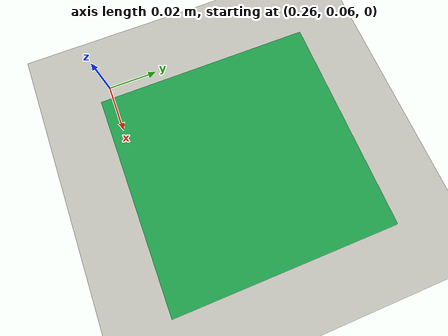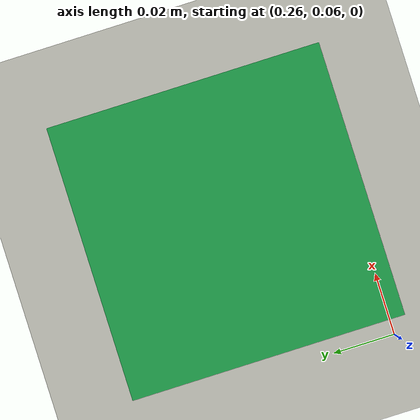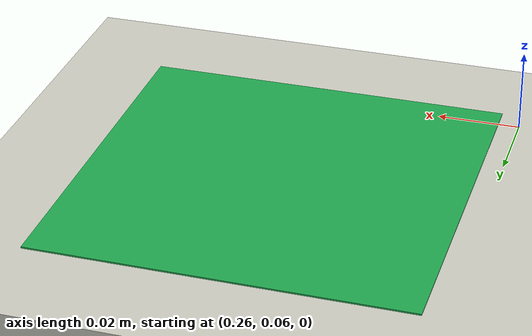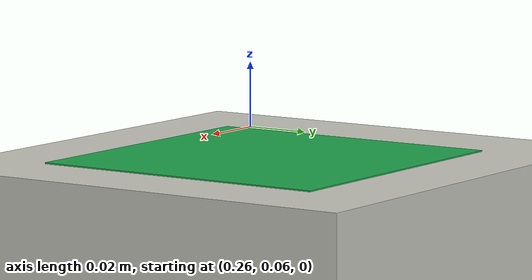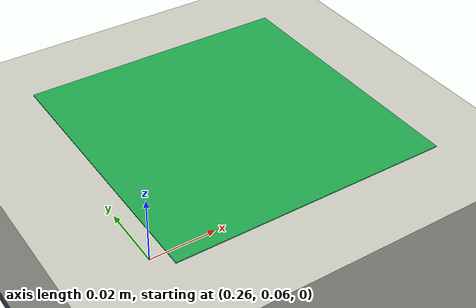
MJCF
<mujoco model="ARX_X5_LLM_tabletop">
  <compiler angle="radian" inertiafromgeom="auto" autolimits="true" />
  <option timestep="0.002" integrator="implicitfast" gravity="0 0 -9.81" cone="elliptic" iterations="80" />
  <visual>
    <global offwidth="640" offheight="480" />
    <quality shadowsize="2048" />
    <map znear="0.01" zfar="5" />
    <headlight ambient=".45 .45 .45" diffuse=".5 .5 .5" specular=".2 .2 .2" />
  </visual>
  <default>
    <geom friction="0.9 0.01 0.001" condim="4" solref="0.006 1" solimp="0.95 0.99 0.001" />
  </default>
  <asset>
    <texture name="sky" type="skybox" builtin="gradient" rgb1="0.25 0.32 0.42" rgb2="0.08 0.11 0.16" width="512" height="3072" />
  </asset>
  <worldbody>
    <light name="key" pos="0.2 -0.4 1.3" dir="0 0 -1" diffuse="0.9 0.9 0.9" />
    <light name="fill" pos="-0.4 0.5 0.8" dir="0 0 -1" diffuse="0.5 0.55 0.65" />
    <geom name="floor" type="plane" size="2 2 .1" pos="0 0 -0.055" rgba=".1 .13 .18 1" />
    <geom name="table" type="box" size=".62 .48 .025" pos=".17 0 -.025" rgba=".79 .79 .75 1" />
    <geom name="target_region" type="box" size=".045 .045 .0002" pos=".31 .10 .00025" rgba=".12 .65 .3 1" contype="0" conaffinity="0" />
    <site name="target_center" pos=".31 .10 .001" size=".001" rgba="0 0 0 0" />
    <camera name="external" pos="0.8 -0.7 0.72" xyaxes="0.7754358600819244 0.6314263432095671 -0.0 -0.3535307318654363 0.43416054790492176 0.8285654109782687" fovy="48" />
  </worldbody>
</mujoco>
